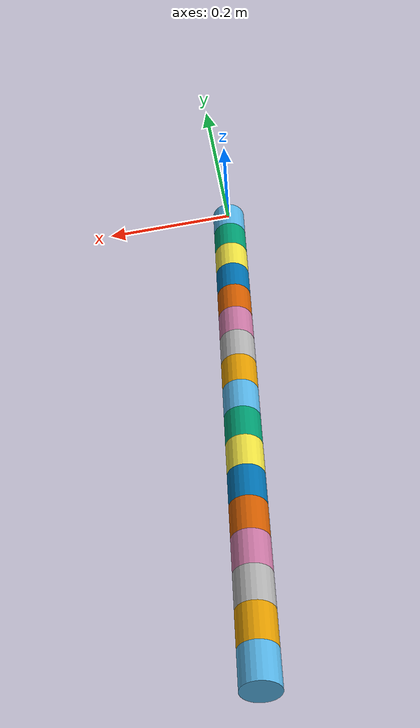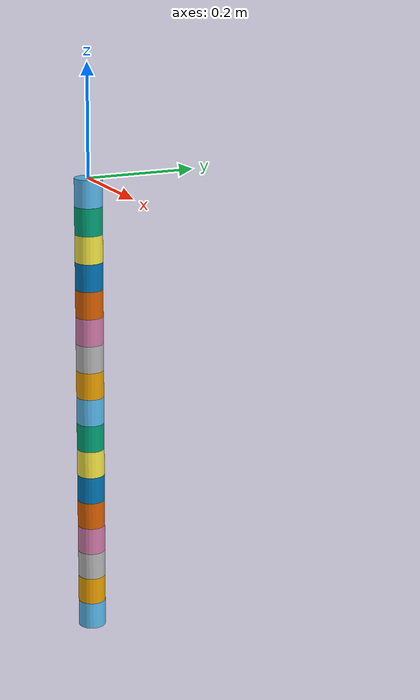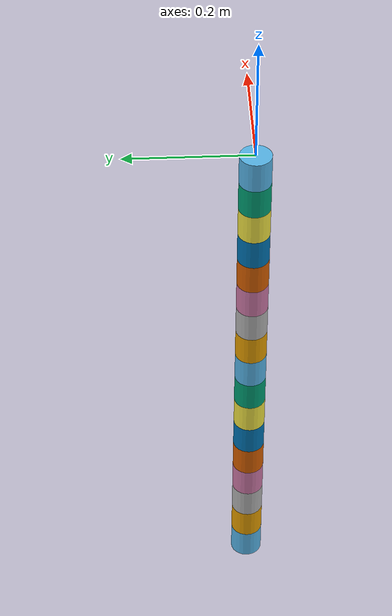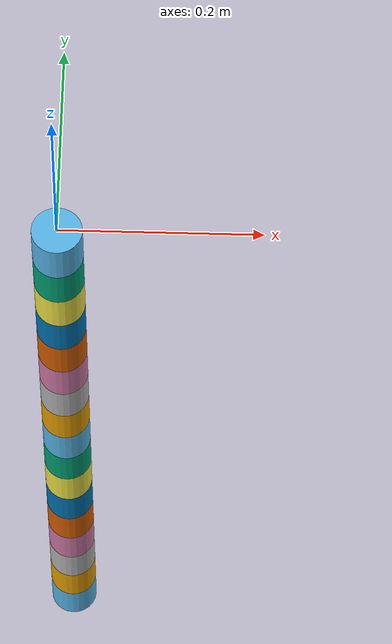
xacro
<?xml version="1.0"?>

<robot name="sea_snake" xmlns:xacro="http://www.ros.org/wiki/xacro">

  <xacro:property name="length" value="0.05" />
  <xacro:property name="radius" value="0.025" />
  <xacro:property name="mass" value="0.159" />
  <xacro:property name="ixx" value="0.000057969" />
  <xacro:property name="iyy" value="0.000057969" />
  <xacro:property name="izz" value="0.000049687" />
  <xacro:property name="ixy" value="0.0" />
  <xacro:property name="iyz" value="0.0" />
  <xacro:property name="ixz" value="0.0" />
  <xacro:property name="ixz" value="0.0" />
  <xacro:property name="friction" value="0.2" />
  <xacro:property name="damping" value="0.001" />
  <xacro:property name="spring_mass" value="0.001" />
  <xacro:property name="spring_inertia" value="0.0" />

  <xacro:macro name="snakelink" params="num">
    <link name="module_${num}">

      <collision>
      	<geometry>
          <cylinder length="${length}" radius="${radius}" />
      	</geometry>
      	<origin xyz="0 0 -${length/2}" rpy="0 0 0" />
      </collision>

      <visual>
	<geometry>
	  <cylinder length="${length}" radius="${radius}" />
	</geometry>
	<origin xyz="0 0 -${length/2}" rpy="0 0 0" />
      </visual>

      <inertial>
	<origin xyz="0 0 -${length/2}" rpy="0 0 0" />
	<mass value="0.159" />
	<inertia
            ixx="${ixx}" ixy="${ixy}" ixz="${ixz}"
            iyy="${iyy}" iyz="${iyz}"
	    izz="${izz}" />
      </inertial>
    </link>
  </xacro:macro>

  <xacro:macro name="sea_joint" params="parent child axis">
    <joint name="joint_${parent}_m" type="revolute">
      <limit effort="1000.0" lower="-${pi/2}" upper="${pi/2}" velocity="10" />
      <dynamics damping="${damping}" friction="${friction}" />
      <parent link="module_${parent}" />
      <child link="spring_${parent}" />
      <origin xyz="0 0 -${length}" />
      <axis xyz="${axis}"/>
    </joint>
    <link name="spring_${parent}">
      <visual>
	<geometry>
	  <cylinder length="${2*radius}" radius=".001" />
	</geometry>
	<origin xyz="0 0 0" rpy="${pi/2} 0 0" />
      </visual>
      <inertial>
	<mass value="${spring_mass}" />
	<inertia
            ixx="${spring_inertia}" ixy="0.0" ixz="0.0"
            iyy="${spring_inertia}" iyz="0.0"
    	    izz="${spring_inertia}" />
      </inertial>
    </link>
    <joint name="joint_${parent}_${child}" type="revolute">
      <limit effort="1000.0" lower="-${pi/2}" upper="${pi/2}" velocity="10" />
      <parent link="spring_${parent}" />
      <child link="module_${child}" />
      <origin xyz="0 0 0" rpy="0 0 0" />
      <axis xyz="${axis}"/>
    </joint>
  </xacro:macro>

  <xacro:macro name="usnake_joint" params="parent child axis">
    <joint name="joint_${parent}_${child}" type="revolute">
      <limit effort="1000.0" lower="-${pi/2}" upper="${pi/2}" velocity="10" />
      <dynamics damping="${damping}" friction="${friction}" />
      <parent link="module_${parent}" />
      <child link="module_${child}" />
      <origin xyz="0 0 -${length}" />
      <axis xyz="${axis}" />
    </joint>
  </xacro:macro>

  <!-- Used for fixing robot to Gazebo 'base_link' -->
  <link name="world" />
  <joint name="fixed" type="fixed">
    <parent link="world" />
    <child link="module_0" />
  </joint>

  <!-- uncomment for sea_snake joints -->

  <!-- uncomment for u_snake joints -->

  <xacro:snakelink num="0" />
  <xacro:usnake_joint parent="0" child="1" axis="0 1 0" />
  <xacro:snakelink num="1" />
  <xacro:usnake_joint parent="1" child="2" axis="1 0 0" />
  <xacro:snakelink num="2" />
  <xacro:usnake_joint parent="2" child="3" axis="0 1 0" />
  <xacro:snakelink num="3" />
  <xacro:usnake_joint parent="3" child="4" axis="1 0 0" />
  <xacro:snakelink num="4" />
  <xacro:usnake_joint parent="4" child="5" axis="0 1 0" />
  <xacro:snakelink num="5" />
  <xacro:usnake_joint parent="5" child="6" axis="1 0 0" />
  <xacro:snakelink num="6" />
  <xacro:usnake_joint parent="6" child="7" axis="0 1 0" />
  <xacro:snakelink num="7" />
  <xacro:usnake_joint parent="7" child="8" axis="1 0 0" />
  <xacro:snakelink num="8" />
  <xacro:usnake_joint parent="8" child="9" axis="0 1 0" />
  <xacro:snakelink num="9" />
  <xacro:usnake_joint parent="9" child="10" axis="1 0 0" />
  <xacro:snakelink num="10" />
  <xacro:usnake_joint parent="10" child="11" axis="0 1 0" />
  <xacro:snakelink num="11" />
  <xacro:usnake_joint parent="11" child="12" axis="1 0 0" />
  <xacro:snakelink num="12" />
  <xacro:usnake_joint parent="12" child="13" axis="0 1 0" />
  <xacro:snakelink num="13" />
  <xacro:usnake_joint parent="13" child="14" axis="1 0 0" />
  <xacro:snakelink num="14" />
  <xacro:usnake_joint parent="14" child="15" axis="0 1 0" />
  <xacro:snakelink num="15" />
  <xacro:usnake_joint parent="15" child="16" axis="1 0 0" />
  <xacro:snakelink num="16" />

</robot>
